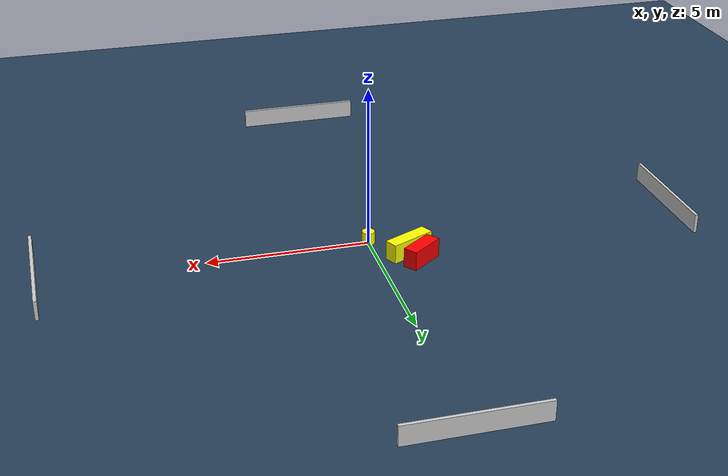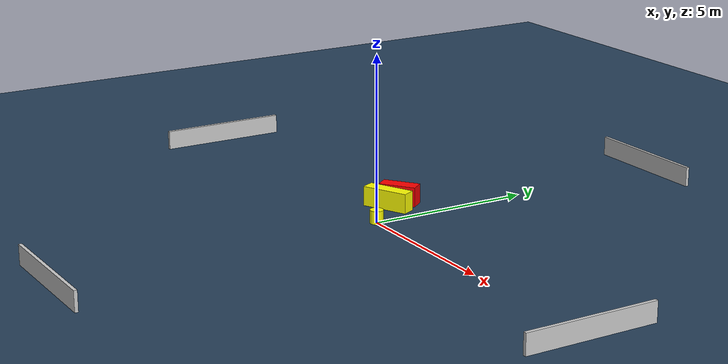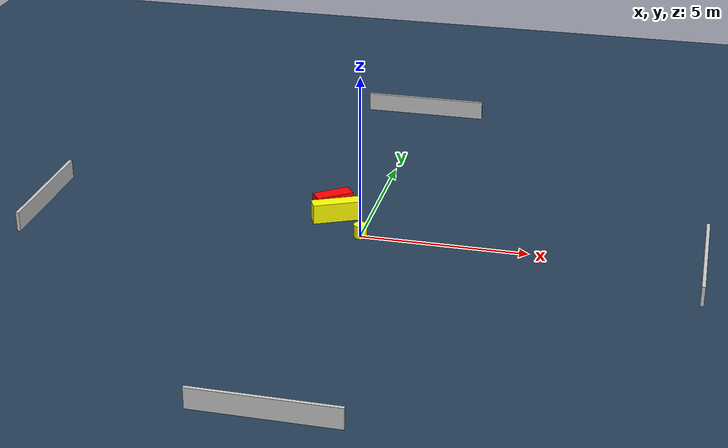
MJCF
<?xml version="1.0" ?>
<mujoco model="generated_environment">
  <option timestep="0.01" integrator="RK4" cone="elliptic"/>
  <default>
    <geom density="1"/>
  </default>
  <asset>
    <texture builtin="gradient" height="3072" name="skybox" rgb1="0.3 0.5 0.7" rgb2="0 0 0" type="skybox" width="512"/>
    <texture builtin="checker" height="300" name="groundplane" rgb1="0.2 0.3 0.4" rgb2="0.1 0.2 0.3" type="2d" width="300"/>
    <material name="groundplane" reflectance="0.2" texrepeat="5 5" texture="groundplane"/>
  </asset>
  <worldbody>
    <light dir="0 0 -1" directional="true" pos="0 0 1.5"/>
    <geom condim="3" friction="0.5 0.005 0.001" material="groundplane" name="floor" pos="0 0 0" size="0 0 0.05" type="plane"/>
    <body name="walls">
      <geom name="wall_1" condim="4" pos="-10.0 0.0 0.3" rgba="0.800000011920929 0.800000011920929 0.800000011920929 1.0" size="0.05 2.0 0.3" type="box"/>
      <geom name="wall_2" condim="4" pos="10.0 0.0 0.3" rgba="0.800000011920929 0.800000011920929 0.800000011920929 1.0" size="0.05 2.0 0.3" type="box"/>
      <geom name="wall_3" condim="4" pos="0.0 -10.0 0.3" rgba="0.800000011920929 0.800000011920929 0.800000011920929 1.0" size="2.0 0.05 0.3" type="box"/>
      <geom name="wall_4" condim="4" pos="0.0 10.0 0.3" rgba="0.800000011920929 0.800000011920929 0.800000011920929 1.0" size="2.0 0.05 0.3" type="box"/>
    </body>
    <body name="robot">
      <joint name="joint_x" type="slide" pos="0 0 0" axis="1 0 0"/>
      <joint name="joint_y" type="slide" pos="0 0 0" axis="0 1 0"/>
      <geom name="robot" type="cylinder" pos="0.0 0.0 0.2" size="0.2 0.2 0.0" mass="5.0" friction="1.0 0.005 0.0001" condim="4" rgba="1.0 1.0 0.0 1.0"/>
    </body>
    <body name="obstacle_1_movable">
      <geom name="obstacle_1_movable" condim="4" pos="-0.9910646281278959 0.9956827068892747 0.3" euler="0 0 205.48622231834287" friction="0.0 0.005 0.001" rgba="1.0 1.0 0.0 1.0" size="0.728869962811449 0.21239149794334142 0.3" type="box" mass="0.1"/>
      <joint type="free"/>
    </body>
    <body name="obstacle_2_static">
      <geom name="obstacle_2_static" condim="4" pos="-1.222693941104469 1.536641390467 0.3" euler="0 0 36.892913408774135" friction="0.0 0.005 0.001" rgba="1.0 0.0 0.0 1.0" size="0.5757047227659103 0.22587234410625054 0.3" type="box"/>
    </body>
  </worldbody>
  <actuator>
    <motor name="actuator_x" joint="joint_x" gear="1" ctrlrange="-1 1"/>
    <motor name="actuator_y" joint="joint_y" gear="1" ctrlrange="-1 1"/>
  </actuator>
</mujoco>
